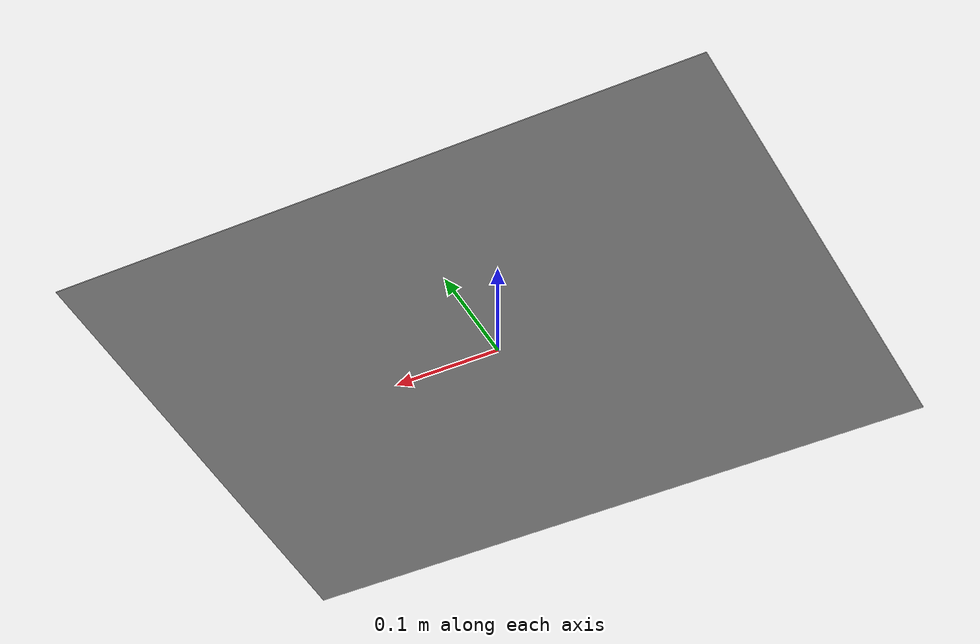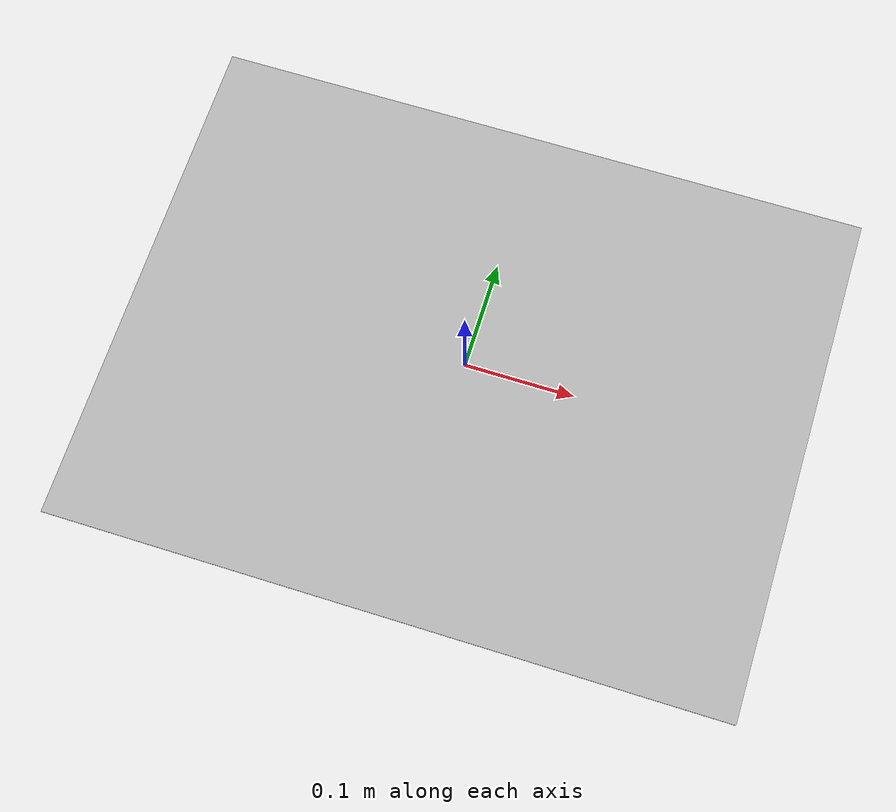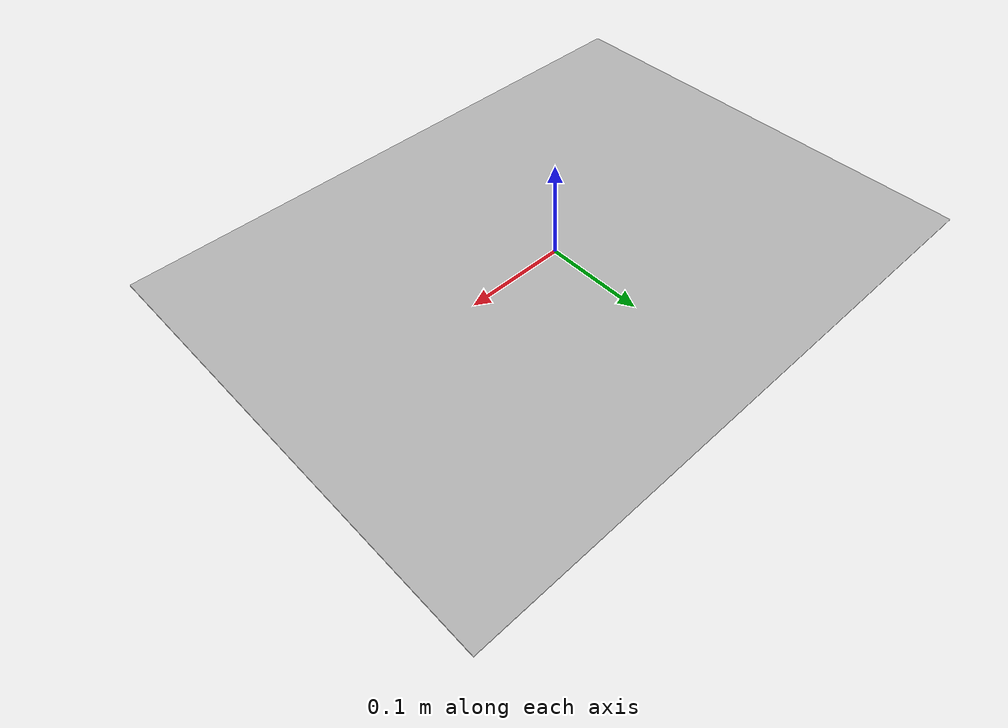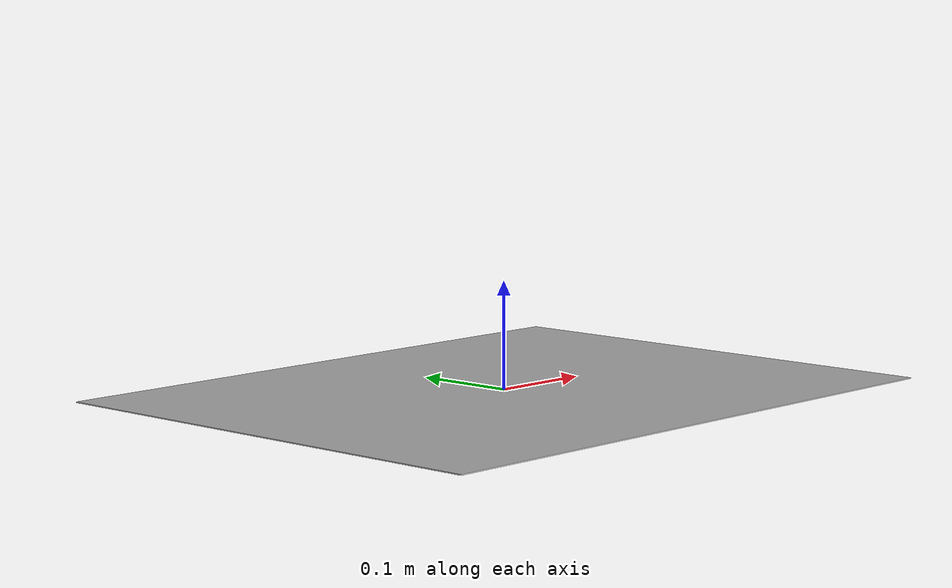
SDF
<?xml version='1.0'?>
<sdf version='1.4'>
    <model name="atags64_0">
        <static>true</static>
        <link name='link'>

            <collision name ='collision'>
                <geometry>
                    <box>
                        <size>0.611 0.473 .001</size>
                    </box>
                </geometry>
            </collision>
            <visual name='visual'>
                <geometry>
                    <box>
                        <size>0.611 0.473 .001</size>
                    </box>
                </geometry>

                <material>
                    <script>
                        <uri>model://atags64_0/materials/scripts</uri>
                        <uri>model://atags64_0/materials/textures</uri>
                        <name>atags64_0/Diffuse</name>
                    </script>
                </material>
            </visual>
        </link>
    </model>
</sdf>
